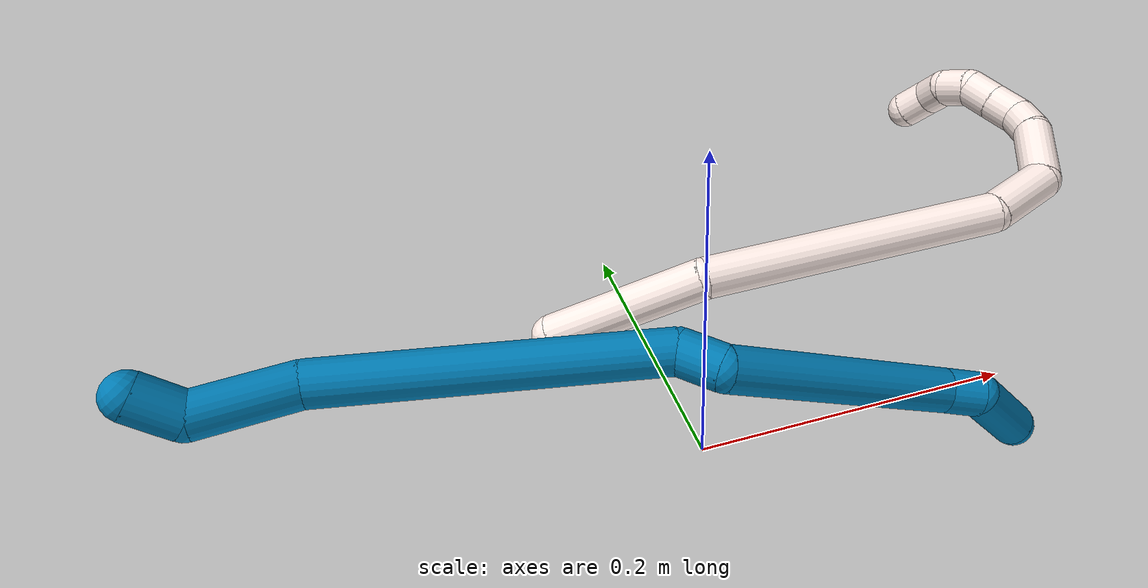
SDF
<sdf version="1.7">
 <world name="default">
  <model name="9">
   <static>0</static>
   <link name="9">
    <collision name="collision-cylinder-e_1_1_4">
     <pose>0.004703 0.000473 -0.012829 -3.10477 0.35116 -2.93473</pose>
     <geometry><cylinder><radius>0.0125</radius><length>0.027345</length></cylinder></geometry>
     <surface>
      <friction><ode><mu>1.16</mu><mu2>1.16</mu2><slip1>0</slip1><slip2>0</slip2></ode></friction>
      <contact><ode><kp>1e+06</kp><kd>1</kd><max_vel>0</max_vel><min_depth>0.001</min_depth></ode></contact>
     </surface>
    </collision>
    <visual name="visual-cylinder-e_1_1_4">
     <pose>0.004703 0.000473 -0.012829 -3.10477 0.35116 -2.93473</pose>
     <geometry><cylinder><radius>0.0125</radius><length>0.027345</length></cylinder></geometry>
     <material><ambient>0 0.490196 0.709804 1</ambient></material>
    </visual>
    <collision name="collision-cylinder-e_2_4_5">
     <pose>0.032257 -0.001149 -0.039842 2.99501 1.01044 2.87764</pose>
     <geometry><cylinder><radius>0.0125</radius><length>0.053952</length></cylinder></geometry>
     <surface>
      <friction><ode><mu>1.16</mu><mu2>1.16</mu2><slip1>0</slip1><slip2>0</slip2></ode></friction>
      <contact><ode><kp>1e+06</kp><kd>1</kd><max_vel>0</max_vel><min_depth>0.001</min_depth></ode></contact>
     </surface>
    </collision>
    <visual name="visual-cylinder-e_2_4_5">
     <pose>0.032257 -0.001149 -0.039842 2.99501 1.01044 2.87764</pose>
     <geometry><cylinder><radius>0.0125</radius><length>0.053952</length></cylinder></geometry>
     <material><ambient>0 0.490196 0.709804 1</ambient></material>
    </visual>
    <collision name="collision-cylinder-e_3_5_6">
     <pose>0.121684 -0.031182 -0.111665 2.69024 0.804709 2.15213</pose>
     <geometry><cylinder><radius>0.0125</radius><length>0.184773</length></cylinder></geometry>
     <surface>
      <friction><ode><mu>1.16</mu><mu2>1.16</mu2><slip1>0</slip1><slip2>0</slip2></ode></friction>
      <contact><ode><kp>1e+06</kp><kd>1</kd><max_vel>0</max_vel><min_depth>0.001</min_depth></ode></contact>
     </surface>
    </collision>
    <visual name="visual-cylinder-e_3_5_6">
     <pose>0.121684 -0.031182 -0.111665 2.69024 0.804709 2.15213</pose>
     <geometry><cylinder><radius>0.0125</radius><length>0.184773</length></cylinder></geometry>
     <material><ambient>0 0.490196 0.709804 1</ambient></material>
    </visual>
    <collision name="collision-cylinder-e_4_6_7">
     <pose>0.19191 -0.067066 -0.178516 2.4299 0.291446 0.752164</pose>
     <geometry><cylinder><radius>0.0125</radius><length>0.0254</length></cylinder></geometry>
     <surface>
      <friction><ode><mu>1.16</mu><mu2>1.16</mu2><slip1>0</slip1><slip2>0</slip2></ode></friction>
      <contact><ode><kp>1e+06</kp><kd>1</kd><max_vel>0</max_vel><min_depth>0.001</min_depth></ode></contact>
     </surface>
    </collision>
    <visual name="visual-cylinder-e_4_6_7">
     <pose>0.19191 -0.067066 -0.178516 2.4299 0.291446 0.752164</pose>
     <geometry><cylinder><radius>0.0125</radius><length>0.0254</length></cylinder></geometry>
     <material><ambient>0 0.490196 0.709804 1</ambient></material>
    </visual>
    <collision name="collision-cylinder-e_5_7_8">
     <pose>0.236823 -0.070752 -0.244187 -3.0663 0.629793 -2.91135</pose>
     <geometry><cylinder><radius>0.0125</radius><length>0.140122</length></cylinder></geometry>
     <surface>
      <friction><ode><mu>1.16</mu><mu2>1.16</mu2><slip1>0</slip1><slip2>0</slip2></ode></friction>
      <contact><ode><kp>1e+06</kp><kd>1</kd><max_vel>0</max_vel><min_depth>0.001</min_depth></ode></contact>
     </surface>
    </collision>
    <visual name="visual-cylinder-e_5_7_8">
     <pose>0.236823 -0.070752 -0.244187 -3.0663 0.629793 -2.91135</pose>
     <geometry><cylinder><radius>0.0125</radius><length>0.140122</length></cylinder></geometry>
     <material><ambient>0 0.490196 0.709804 1</ambient></material>
    </visual>
    <collision name="collision-cylinder-e_6_8_9">
     <pose>0.284184 -0.0687 -0.308869 2.8793 0.6215 2.36218</pose>
     <geometry><cylinder><radius>0.0125</radius><length>0.020942</length></cylinder></geometry>
     <surface>
      <friction><ode><mu>1.16</mu><mu2>1.16</mu2><slip1>0</slip1><slip2>0</slip2></ode></friction>
      <contact><ode><kp>1e+06</kp><kd>1</kd><max_vel>0</max_vel><min_depth>0.001</min_depth></ode></contact>
     </surface>
    </collision>
    <visual name="visual-cylinder-e_6_8_9">
     <pose>0.284184 -0.0687 -0.308869 2.8793 0.6215 2.36218</pose>
     <geometry><cylinder><radius>0.0125</radius><length>0.020942</length></cylinder></geometry>
     <material><ambient>0 0.490196 0.709804 1</ambient></material>
    </visual>
    <collision name="collision-cylinder-e_7_9_2">
     <pose>0.295782 -0.062484 -0.338585 -2.76811 0.2339 -1.11259</pose>
     <geometry><cylinder><radius>0.0125</radius><length>0.047465</length></cylinder></geometry>
     <surface>
      <friction><ode><mu>1.16</mu><mu2>1.16</mu2><slip1>0</slip1><slip2>0</slip2></ode></friction>
      <contact><ode><kp>1e+06</kp><kd>1</kd><max_vel>0</max_vel><min_depth>0.001</min_depth></ode></contact>
     </surface>
    </collision>
    <visual name="visual-cylinder-e_7_9_2">
     <pose>0.295782 -0.062484 -0.338585 -2.76811 0.2339 -1.11259</pose>
     <geometry><cylinder><radius>0.0125</radius><length>0.047465</length></cylinder></geometry>
     <material><ambient>0 0.490196 0.709804 1</ambient></material>
    </visual>
    <collision name="collision-sphere-2">
     <pose>0.301282 -0.054061 -0.36008 0 -0 0</pose>
     <geometry><sphere><radius>0.0125</radius></sphere></geometry>
     <surface>
      <friction><ode><mu>1.16</mu><mu2>1.16</mu2><slip1>0</slip1><slip2>0</slip2></ode></friction>
      <contact><ode><kp>1e+06</kp><kd>1</kd><max_vel>0</max_vel><min_depth>0.001</min_depth></ode></contact>
     </surface>
    </collision>
    <visual name="visual-sphere-2">
     <pose>0.301282 -0.054061 -0.36008 0 -0 0</pose>
     <geometry><sphere><radius>0.0125</radius></sphere></geometry>
     <material><ambient>0 0.490196 0.709804 1</ambient></material>
    </visual>
    <collision name="collision-sphere-9">
     <pose>0.290281 -0.070907 -0.31709 0 -0 0</pose>
     <geometry><sphere><radius>0.0125</radius></sphere></geometry>
     <surface>
      <friction><ode><mu>1.16</mu><mu2>1.16</mu2><slip1>0</slip1><slip2>0</slip2></ode></friction>
      <contact><ode><kp>1e+06</kp><kd>1</kd><max_vel>0</max_vel><min_depth>0.001</min_depth></ode></contact>
     </surface>
    </collision>
    <visual name="visual-sphere-9">
     <pose>0.290281 -0.070907 -0.31709 0 -0 0</pose>
     <geometry><sphere><radius>0.0125</radius></sphere></geometry>
     <material><ambient>0 0.490196 0.709804 1</ambient></material>
    </visual>
    <collision name="collision-sphere-4">
     <pose>0.009406 0.000945 -0.025659 0 -0 0</pose>
     <geometry><sphere><radius>0.0125</radius></sphere></geometry>
     <surface>
      <friction><ode><mu>1.16</mu><mu2>1.16</mu2><slip1>0</slip1><slip2>0</slip2></ode></friction>
      <contact><ode><kp>1e+06</kp><kd>1</kd><max_vel>0</max_vel><min_depth>0.001</min_depth></ode></contact>
     </surface>
    </collision>
    <visual name="visual-sphere-4">
     <pose>0.009406 0.000945 -0.025659 0 -0 0</pose>
     <geometry><sphere><radius>0.0125</radius></sphere></geometry>
     <material><ambient>0 0.490196 0.709804 1</ambient></material>
    </visual>
    <collision name="collision-sphere-1">
     <geometry><sphere><radius>0.0125</radius></sphere></geometry>
     <surface>
      <friction><ode><mu>1.16</mu><mu2>1.16</mu2><slip1>0</slip1><slip2>0</slip2></ode></friction>
      <contact><ode><kp>1e+06</kp><kd>1</kd><max_vel>0</max_vel><min_depth>0.001</min_depth></ode></contact>
     </surface>
    </collision>
    <visual name="visual-sphere-1">
     <geometry><sphere><radius>0.0125</radius></sphere></geometry>
     <material><ambient>0 0.490196 0.709804 1</ambient></material>
    </visual>
    <collision name="collision-sphere-8">
     <pose>0.278088 -0.066493 -0.300647 0 -0 0</pose>
     <geometry><sphere><radius>0.0125</radius></sphere></geometry>
     <surface>
      <friction><ode><mu>1.16</mu><mu2>1.16</mu2><slip1>0</slip1><slip2>0</slip2></ode></friction>
      <contact><ode><kp>1e+06</kp><kd>1</kd><max_vel>0</max_vel><min_depth>0.001</min_depth></ode></contact>
     </surface>
    </collision>
    <visual name="visual-sphere-8">
     <pose>0.278088 -0.066493 -0.300647 0 -0 0</pose>
     <geometry><sphere><radius>0.0125</radius></sphere></geometry>
     <material><ambient>0 0.490196 0.709804 1</ambient></material>
    </visual>
    <collision name="collision-sphere-5">
     <pose>0.055107 -0.003243 -0.054026 0 -0 0</pose>
     <geometry><sphere><radius>0.0125</radius></sphere></geometry>
     <surface>
      <friction><ode><mu>1.16</mu><mu2>1.16</mu2><slip1>0</slip1><slip2>0</slip2></ode></friction>
      <contact><ode><kp>1e+06</kp><kd>1</kd><max_vel>0</max_vel><min_depth>0.001</min_depth></ode></contact>
     </surface>
    </collision>
    <visual name="visual-sphere-5">
     <pose>0.055107 -0.003243 -0.054026 0 -0 0</pose>
     <geometry><sphere><radius>0.0125</radius></sphere></geometry>
     <material><ambient>0 0.490196 0.709804 1</ambient></material>
    </visual>
    <collision name="collision-sphere-6">
     <pose>0.18826 -0.059121 -0.169305 0 -0 0</pose>
     <geometry><sphere><radius>0.0125</radius></sphere></geometry>
     <surface>
      <friction><ode><mu>1.16</mu><mu2>1.16</mu2><slip1>0</slip1><slip2>0</slip2></ode></friction>
      <contact><ode><kp>1e+06</kp><kd>1</kd><max_vel>0</max_vel><min_depth>0.001</min_depth></ode></contact>
     </surface>
    </collision>
    <visual name="visual-sphere-6">
     <pose>0.18826 -0.059121 -0.169305 0 -0 0</pose>
     <geometry><sphere><radius>0.0125</radius></sphere></geometry>
     <material><ambient>0 0.490196 0.709804 1</ambient></material>
    </visual>
    <collision name="collision-sphere-7">
     <pose>0.195559 -0.075011 -0.187728 0 -0 0</pose>
     <geometry><sphere><radius>0.0125</radius></sphere></geometry>
     <surface>
      <friction><ode><mu>1.16</mu><mu2>1.16</mu2><slip1>0</slip1><slip2>0</slip2></ode></friction>
      <contact><ode><kp>1e+06</kp><kd>1</kd><max_vel>0</max_vel><min_depth>0.001</min_depth></ode></contact>
     </surface>
    </collision>
    <visual name="visual-sphere-7">
     <pose>0.195559 -0.075011 -0.187728 0 -0 0</pose>
     <geometry><sphere><radius>0.0125</radius></sphere></geometry>
     <material><ambient>0 0.490196 0.709804 1</ambient></material>
    </visual>
    <inertial>
     <pose>0.164805 -0.043665 -0.168846 0 -0 0</pose>
     <mass>0.5</mass>
     <inertia>
      <ixx>-0.000109</ixx>
      <ixy>0</ixy>
      <ixz>0</ixz>
      <iyy>0.000904</iyy>
      <iyz>0</iyz>
      <izz>-0.000422</izz>
     </inertia>
    </inertial>
   </link>
   <pose>-0.28396 0.010533 0.118529 -0.588776 -0.468818 0.418147</pose>
  </model>
  <model name="11">
   <static>0</static>
   <link name="11">
    <collision name="collision-cylinder-e_1_1_4">
     <pose>0.046224 -0.002732 0.018411 0.147312 1.188 0.099588</pose>
     <geometry><cylinder><radius>0.0125</radius><length>0.099661</length></cylinder></geometry>
     <surface>
      <friction><ode><mu>1.16</mu><mu2>1.16</mu2><slip1>0</slip1><slip2>0</slip2></ode></friction>
      <contact><ode><kp>1e+06</kp><kd>1</kd><max_vel>0</max_vel><min_depth>0.001</min_depth></ode></contact>
     </surface>
    </collision>
    <visual name="visual-cylinder-e_1_1_4">
     <pose>0.046224 -0.002732 0.018411 0.147312 1.188 0.099588</pose>
     <geometry><cylinder><radius>0.0125</radius><length>0.099661</length></cylinder></geometry>
     <material><ambient>1 0.933333 0.909804 1</ambient></material>
    </visual>
    <collision name="collision-cylinder-e_2_4_5">
     <pose>0.154814 -0.019338 0.104079 0.203438 0.737296 0.078821</pose>
     <geometry><cylinder><radius>0.0125</radius><length>0.185532</length></cylinder></geometry>
     <surface>
      <friction><ode><mu>1.16</mu><mu2>1.16</mu2><slip1>0</slip1><slip2>0</slip2></ode></friction>
      <contact><ode><kp>1e+06</kp><kd>1</kd><max_vel>0</max_vel><min_depth>0.001</min_depth></ode></contact>
     </surface>
    </collision>
    <visual name="visual-cylinder-e_2_4_5">
     <pose>0.154814 -0.019338 0.104079 0.203438 0.737296 0.078821</pose>
     <geometry><cylinder><radius>0.0125</radius><length>0.185532</length></cylinder></geometry>
     <material><ambient>1 0.933333 0.909804 1</ambient></material>
    </visual>
    <collision name="collision-cylinder-e_3_5_6">
     <pose>0.228669 -0.045749 0.188552 0.62938 0.494755 0.164045</pose>
     <geometry><cylinder><radius>0.0125</radius><length>0.048397</length></cylinder></geometry>
     <surface>
      <friction><ode><mu>1.16</mu><mu2>1.16</mu2><slip1>0</slip1><slip2>0</slip2></ode></friction>
      <contact><ode><kp>1e+06</kp><kd>1</kd><max_vel>0</max_vel><min_depth>0.001</min_depth></ode></contact>
     </surface>
    </collision>
    <visual name="visual-cylinder-e_3_5_6">
     <pose>0.228669 -0.045749 0.188552 0.62938 0.494755 0.164045</pose>
     <geometry><cylinder><radius>0.0125</radius><length>0.048397</length></cylinder></geometry>
     <material><ambient>1 0.933333 0.909804 1</ambient></material>
    </visual>
    <collision name="collision-cylinder-e_4_6_7">
     <pose>0.240887 -0.07995 0.212667 1.26253 0.032019 0.023409</pose>
     <geometry><cylinder><radius>0.0125</radius><length>0.045496</length></cylinder></geometry>
     <surface>
      <friction><ode><mu>1.16</mu><mu2>1.16</mu2><slip1>0</slip1><slip2>0</slip2></ode></friction>
      <contact><ode><kp>1e+06</kp><kd>1</kd><max_vel>0</max_vel><min_depth>0.001</min_depth></ode></contact>
     </surface>
    </collision>
    <visual name="visual-cylinder-e_4_6_7">
     <pose>0.240887 -0.07995 0.212667 1.26253 0.032019 0.023409</pose>
     <geometry><cylinder><radius>0.0125</radius><length>0.045496</length></cylinder></geometry>
     <material><ambient>1 0.933333 0.909804 1</ambient></material>
    </visual>
    <collision name="collision-cylinder-e_5_7_8">
     <pose>0.23843 -0.111035 0.221248 1.39406 -0.321369 -0.26975</pose>
     <geometry><cylinder><radius>0.0125</radius><length>0.020171</length></cylinder></geometry>
     <surface>
      <friction><ode><mu>1.16</mu><mu2>1.16</mu2><slip1>0</slip1><slip2>0</slip2></ode></friction>
      <contact><ode><kp>1e+06</kp><kd>1</kd><max_vel>0</max_vel><min_depth>0.001</min_depth></ode></contact>
     </surface>
    </collision>
    <visual name="visual-cylinder-e_5_7_8">
     <pose>0.23843 -0.111035 0.221248 1.39406 -0.321369 -0.26975</pose>
     <geometry><cylinder><radius>0.0125</radius><length>0.020171</length></cylinder></geometry>
     <material><ambient>1 0.933333 0.909804 1</ambient></material>
    </visual>
    <collision name="collision-cylinder-e_6_8_9">
     <pose>0.230026 -0.129024 0.220513 1.84566 -0.530079 -0.688548</pose>
     <geometry><cylinder><radius>0.0125</radius><length>0.02064</length></cylinder></geometry>
     <surface>
      <friction><ode><mu>1.16</mu><mu2>1.16</mu2><slip1>0</slip1><slip2>0</slip2></ode></friction>
      <contact><ode><kp>1e+06</kp><kd>1</kd><max_vel>0</max_vel><min_depth>0.001</min_depth></ode></contact>
     </surface>
    </collision>
    <visual name="visual-cylinder-e_6_8_9">
     <pose>0.230026 -0.129024 0.220513 1.84566 -0.530079 -0.688548</pose>
     <geometry><cylinder><radius>0.0125</radius><length>0.02064</length></cylinder></geometry>
     <material><ambient>1 0.933333 0.909804 1</ambient></material>
    </visual>
    <collision name="collision-cylinder-e_7_9_10">
     <pose>0.219874 -0.145778 0.215123 1.91936 -0.51556 -0.719863</pose>
     <geometry><cylinder><radius>0.0125</radius><length>0.020018</length></cylinder></geometry>
     <surface>
      <friction><ode><mu>1.16</mu><mu2>1.16</mu2><slip1>0</slip1><slip2>0</slip2></ode></friction>
      <contact><ode><kp>1e+06</kp><kd>1</kd><max_vel>0</max_vel><min_depth>0.001</min_depth></ode></contact>
     </surface>
    </collision>
    <visual name="visual-cylinder-e_7_9_10">
     <pose>0.219874 -0.145778 0.215123 1.91936 -0.51556 -0.719863</pose>
     <geometry><cylinder><radius>0.0125</radius><length>0.020018</length></cylinder></geometry>
     <material><ambient>1 0.933333 0.909804 1</ambient></material>
    </visual>
    <collision name="collision-cylinder-e_8_10_11">
     <pose>0.206552 -0.159437 0.211754 1.6427 -0.991396 -1.05278</pose>
     <geometry><cylinder><radius>0.0125</radius><length>0.020047</length></cylinder></geometry>
     <surface>
      <friction><ode><mu>1.16</mu><mu2>1.16</mu2><slip1>0</slip1><slip2>0</slip2></ode></friction>
      <contact><ode><kp>1e+06</kp><kd>1</kd><max_vel>0</max_vel><min_depth>0.001</min_depth></ode></contact>
     </surface>
    </collision>
    <visual name="visual-cylinder-e_8_10_11">
     <pose>0.206552 -0.159437 0.211754 1.6427 -0.991396 -1.05278</pose>
     <geometry><cylinder><radius>0.0125</radius><length>0.020047</length></cylinder></geometry>
     <material><ambient>1 0.933333 0.909804 1</ambient></material>
    </visual>
    <collision name="collision-cylinder-e_9_11_12">
     <pose>0.189743 -0.168412 0.215472 0.705408 -1.0005 -0.397118</pose>
     <geometry><cylinder><radius>0.0125</radius><length>0.02001</length></cylinder></geometry>
     <surface>
      <friction><ode><mu>1.16</mu><mu2>1.16</mu2><slip1>0</slip1><slip2>0</slip2></ode></friction>
      <contact><ode><kp>1e+06</kp><kd>1</kd><max_vel>0</max_vel><min_depth>0.001</min_depth></ode></contact>
     </surface>
    </collision>
    <visual name="visual-cylinder-e_9_11_12">
     <pose>0.189743 -0.168412 0.215472 0.705408 -1.0005 -0.397118</pose>
     <geometry><cylinder><radius>0.0125</radius><length>0.02001</length></cylinder></geometry>
     <material><ambient>1 0.933333 0.909804 1</ambient></material>
    </visual>
    <collision name="collision-cylinder-e_10_12_2">
     <pose>0.171333 -0.172588 0.219842 1.20542 -1.49868 -1.13892</pose>
     <geometry><cylinder><radius>0.0125</radius><length>0.020028</length></cylinder></geometry>
     <surface>
      <friction><ode><mu>1.16</mu><mu2>1.16</mu2><slip1>0</slip1><slip2>0</slip2></ode></friction>
      <contact><ode><kp>1e+06</kp><kd>1</kd><max_vel>0</max_vel><min_depth>0.001</min_depth></ode></contact>
     </surface>
    </collision>
    <visual name="visual-cylinder-e_10_12_2">
     <pose>0.171333 -0.172588 0.219842 1.20542 -1.49868 -1.13892</pose>
     <geometry><cylinder><radius>0.0125</radius><length>0.020028</length></cylinder></geometry>
     <material><ambient>1 0.933333 0.909804 1</ambient></material>
    </visual>
    <collision name="collision-sphere-2">
     <pose>0.161345 -0.173262 0.2201 0 -0 0</pose>
     <geometry><sphere><radius>0.0125</radius></sphere></geometry>
     <surface>
      <friction><ode><mu>1.16</mu><mu2>1.16</mu2><slip1>0</slip1><slip2>0</slip2></ode></friction>
      <contact><ode><kp>1e+06</kp><kd>1</kd><max_vel>0</max_vel><min_depth>0.001</min_depth></ode></contact>
     </surface>
    </collision>
    <visual name="visual-sphere-2">
     <pose>0.161345 -0.173262 0.2201 0 -0 0</pose>
     <geometry><sphere><radius>0.0125</radius></sphere></geometry>
     <material><ambient>1 0.933333 0.909804 1</ambient></material>
    </visual>
    <collision name="collision-sphere-12">
     <pose>0.181321 -0.171915 0.219585 0 -0 0</pose>
     <geometry><sphere><radius>0.0125</radius></sphere></geometry>
     <surface>
      <friction><ode><mu>1.16</mu><mu2>1.16</mu2><slip1>0</slip1><slip2>0</slip2></ode></friction>
      <contact><ode><kp>1e+06</kp><kd>1</kd><max_vel>0</max_vel><min_depth>0.001</min_depth></ode></contact>
     </surface>
    </collision>
    <visual name="visual-sphere-12">
     <pose>0.181321 -0.171915 0.219585 0 -0 0</pose>
     <geometry><sphere><radius>0.0125</radius></sphere></geometry>
     <material><ambient>1 0.933333 0.909804 1</ambient></material>
    </visual>
    <collision name="collision-sphere-11">
     <pose>0.198164 -0.16491 0.21136 0 -0 0</pose>
     <geometry><sphere><radius>0.0125</radius></sphere></geometry>
     <surface>
      <friction><ode><mu>1.16</mu><mu2>1.16</mu2><slip1>0</slip1><slip2>0</slip2></ode></friction>
      <contact><ode><kp>1e+06</kp><kd>1</kd><max_vel>0</max_vel><min_depth>0.001</min_depth></ode></contact>
     </surface>
    </collision>
    <visual name="visual-sphere-11">
     <pose>0.198164 -0.16491 0.21136 0 -0 0</pose>
     <geometry><sphere><radius>0.0125</radius></sphere></geometry>
     <material><ambient>1 0.933333 0.909804 1</ambient></material>
    </visual>
    <collision name="collision-sphere-10">
     <pose>0.214939 -0.153963 0.212148 0 -0 0</pose>
     <geometry><sphere><radius>0.0125</radius></sphere></geometry>
     <surface>
      <friction><ode><mu>1.16</mu><mu2>1.16</mu2><slip1>0</slip1><slip2>0</slip2></ode></friction>
      <contact><ode><kp>1e+06</kp><kd>1</kd><max_vel>0</max_vel><min_depth>0.001</min_depth></ode></contact>
     </surface>
    </collision>
    <visual name="visual-sphere-10">
     <pose>0.214939 -0.153963 0.212148 0 -0 0</pose>
     <geometry><sphere><radius>0.0125</radius></sphere></geometry>
     <material><ambient>1 0.933333 0.909804 1</ambient></material>
    </visual>
    <collision name="collision-sphere-9">
     <pose>0.224808 -0.137594 0.218097 0 -0 0</pose>
     <geometry><sphere><radius>0.0125</radius></sphere></geometry>
     <surface>
      <friction><ode><mu>1.16</mu><mu2>1.16</mu2><slip1>0</slip1><slip2>0</slip2></ode></friction>
      <contact><ode><kp>1e+06</kp><kd>1</kd><max_vel>0</max_vel><min_depth>0.001</min_depth></ode></contact>
     </surface>
    </collision>
    <visual name="visual-sphere-9">
     <pose>0.224808 -0.137594 0.218097 0 -0 0</pose>
     <geometry><sphere><radius>0.0125</radius></sphere></geometry>
     <material><ambient>1 0.933333 0.909804 1</ambient></material>
    </visual>
    <collision name="collision-sphere-4">
     <pose>0.092448 -0.005464 0.036821 0 -0 0</pose>
     <geometry><sphere><radius>0.0125</radius></sphere></geometry>
     <surface>
      <friction><ode><mu>1.16</mu><mu2>1.16</mu2><slip1>0</slip1><slip2>0</slip2></ode></friction>
      <contact><ode><kp>1e+06</kp><kd>1</kd><max_vel>0</max_vel><min_depth>0.001</min_depth></ode></contact>
     </surface>
    </collision>
    <visual name="visual-sphere-4">
     <pose>0.092448 -0.005464 0.036821 0 -0 0</pose>
     <geometry><sphere><radius>0.0125</radius></sphere></geometry>
     <material><ambient>1 0.933333 0.909804 1</ambient></material>
    </visual>
    <collision name="collision-sphere-1">
     <geometry><sphere><radius>0.0125</radius></sphere></geometry>
     <surface>
      <friction><ode><mu>1.16</mu><mu2>1.16</mu2><slip1>0</slip1><slip2>0</slip2></ode></friction>
      <contact><ode><kp>1e+06</kp><kd>1</kd><max_vel>0</max_vel><min_depth>0.001</min_depth></ode></contact>
     </surface>
    </collision>
    <visual name="visual-sphere-1">
     <geometry><sphere><radius>0.0125</radius></sphere></geometry>
     <material><ambient>1 0.933333 0.909804 1</ambient></material>
    </visual>
    <collision name="collision-sphere-8">
     <pose>0.235244 -0.120455 0.22293 0 -0 0</pose>
     <geometry><sphere><radius>0.0125</radius></sphere></geometry>
     <surface>
      <friction><ode><mu>1.16</mu><mu2>1.16</mu2><slip1>0</slip1><slip2>0</slip2></ode></friction>
      <contact><ode><kp>1e+06</kp><kd>1</kd><max_vel>0</max_vel><min_depth>0.001</min_depth></ode></contact>
     </surface>
    </collision>
    <visual name="visual-sphere-8">
     <pose>0.235244 -0.120455 0.22293 0 -0 0</pose>
     <geometry><sphere><radius>0.0125</radius></sphere></geometry>
     <material><ambient>1 0.933333 0.909804 1</ambient></material>
    </visual>
    <collision name="collision-sphere-5">
     <pose>0.217179 -0.033213 0.171336 0 -0 0</pose>
     <geometry><sphere><radius>0.0125</radius></sphere></geometry>
     <surface>
      <friction><ode><mu>1.16</mu><mu2>1.16</mu2><slip1>0</slip1><slip2>0</slip2></ode></friction>
      <contact><ode><kp>1e+06</kp><kd>1</kd><max_vel>0</max_vel><min_depth>0.001</min_depth></ode></contact>
     </surface>
    </collision>
    <visual name="visual-sphere-5">
     <pose>0.217179 -0.033213 0.171336 0 -0 0</pose>
     <geometry><sphere><radius>0.0125</radius></sphere></geometry>
     <material><ambient>1 0.933333 0.909804 1</ambient></material>
    </visual>
    <collision name="collision-sphere-6">
     <pose>0.240159 -0.058285 0.205769 0 -0 0</pose>
     <geometry><sphere><radius>0.0125</radius></sphere></geometry>
     <surface>
      <friction><ode><mu>1.16</mu><mu2>1.16</mu2><slip1>0</slip1><slip2>0</slip2></ode></friction>
      <contact><ode><kp>1e+06</kp><kd>1</kd><max_vel>0</max_vel><min_depth>0.001</min_depth></ode></contact>
     </surface>
    </collision>
    <visual name="visual-sphere-6">
     <pose>0.240159 -0.058285 0.205769 0 -0 0</pose>
     <geometry><sphere><radius>0.0125</radius></sphere></geometry>
     <material><ambient>1 0.933333 0.909804 1</ambient></material>
    </visual>
    <collision name="collision-sphere-7">
     <pose>0.241615 -0.101615 0.219565 0 -0 0</pose>
     <geometry><sphere><radius>0.0125</radius></sphere></geometry>
     <surface>
      <friction><ode><mu>1.16</mu><mu2>1.16</mu2><slip1>0</slip1><slip2>0</slip2></ode></friction>
      <contact><ode><kp>1e+06</kp><kd>1</kd><max_vel>0</max_vel><min_depth>0.001</min_depth></ode></contact>
     </surface>
    </collision>
    <visual name="visual-sphere-7">
     <pose>0.241615 -0.101615 0.219565 0 -0 0</pose>
     <geometry><sphere><radius>0.0125</radius></sphere></geometry>
     <material><ambient>1 0.933333 0.909804 1</ambient></material>
    </visual>
    <inertial>
     <pose>0.161367 -0.055111 0.132452 0 -0 0</pose>
     <mass>0.5</mass>
     <inertia><ixx>0.0005</ixx><ixy>0</ixy><ixz>0</ixz><iyy>0.000655</iyy><iyz>0</iyz><izz>-0.00032</izz></inertia>
    </inertial>
   </link>
   <pose>-0.068541 0.075158 0.047712 -2.54917 -0.736065 -0.62223</pose>
  </model>
 </world>
</sdf>
